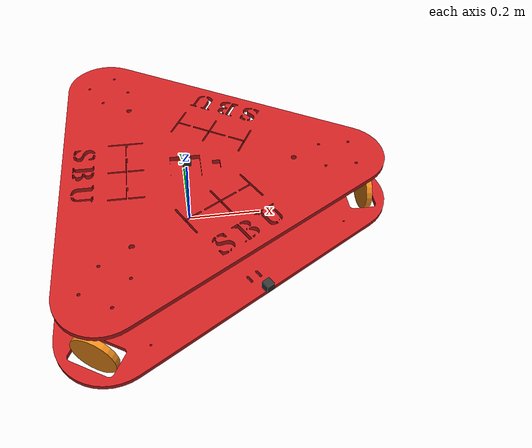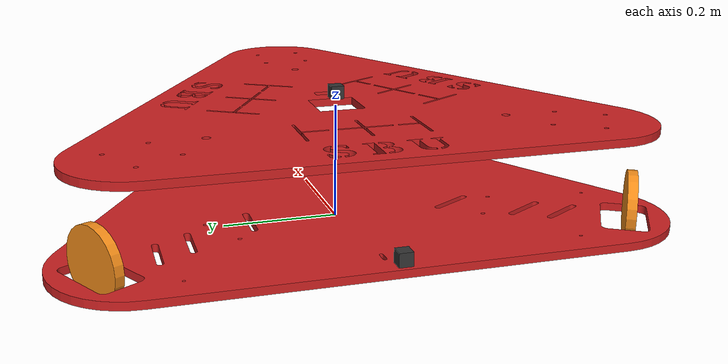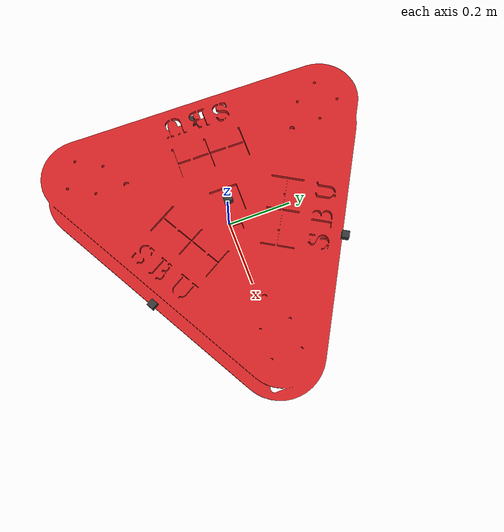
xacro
<?xml version="1.0"?>
<robot xmlns:xacro="http://www.ros.org/wiki/xacro" name="robot">

 <xacro:property name="M_PI" value="3.1415926535897931" />
 <xacro:property name="rob_scale" value="0.225"/>
 <xacro:property name="camera_z" value="${rob_scale}"/>
 <xacro:property name="base_z" value="${rob_scale*0.52}"/>

<xacro:property name="right_wheel_x" value="${rob_scale*2.195}"/>
<xacro:property name="right_wheel_y" value="${rob_scale*0}"/>
<xacro:property name="right_wheel_z" value="${rob_scale*0.27}"/>

<xacro:property name="right_wheel_length" value="${rob_scale*0.07}"/>
<xacro:property name="right_wheel_radius" value="${rob_scale*0.27}"/>
<xacro:property name="right_wheel_mass" value="${rob_scale*40}"/>

<xacro:property name="left_wheel_x" value="${rob_scale*-1.10000}"/>
<xacro:property name="left_wheel_y" value="${rob_scale*-1.9}"/>
<xacro:property name="left_wheel_z" value="${rob_scale*0.27}"/>

<xacro:property name="left_wheel_length" value="${rob_scale*0.07}"/>
<xacro:property name="left_wheel_radius" value="${rob_scale*0.27}"/>
<xacro:property name="left_wheel_mass" value="${rob_scale*40}"/>

<xacro:property name="left2_wheel_x" value="${rob_scale*-1.10000}"/>
<xacro:property name="left2_wheel_y" value="${rob_scale*1.9}"/>
<xacro:property name="left2_wheel_z" value="${rob_scale*0.27}"/>

<xacro:property name="left2_wheel_length" value="${rob_scale*0.07}"/>
<xacro:property name="left2_wheel_radius" value="${rob_scale*0.27}"/>
<xacro:property name="left2_wheel_mass" value="${rob_scale*40}"/>

<xacro:property name="sensor_size" value="${rob_scale*0.1}"/>

  <material name="black">
    <color rgba="0.0 0.0 0.0 1.0"/>
  </material>
  <material name="blue">
    <color rgba="0.203125 0.23828125 0.28515625 1.0"/>
  </material>
  <material name="green">
    <color rgba="0.0 0.8 0.0 1.0"/>
  </material>
  <material name="grey">
    <color rgba="0.2 0.2 0.2 1.0"/>
  </material>
  <material name="orange">
    <color rgba="1.0 0.423529411765 0.0392156862745 1.0"/>
  </material>
  <material name="brown">
    <color rgba="0.870588235294 0.811764705882 0.764705882353 1.0"/>
  </material>
  <material name="red">
    <color rgba="0.80078125 0.12890625 0.1328125 1.0"/>
  </material>
  <material name="white">
    <color rgba="1.0 1.0 1.0 1.0"/>
  </material>

    <gazebo reference="link_chassis">
    <material>Gazebo/Orange</material>
  </gazebo>
  <gazebo reference="link_left_wheel">
    <material>Gazebo/Orange</material>
  </gazebo>
  <gazebo reference="link_right_wheel">
    <material>Gazebo/Orange</material>
  </gazebo>
  <gazebo reference="link_left2_wheel">
    <material>Gazebo/Orange</material>
  </gazebo>
  <gazebo reference="camera_link">
    <material>Gazebo/Blue</material>
  </gazebo>
    <gazebo reference="sonar_link_1">
    <material>Gazebo/Black</material>
  </gazebo>
    <gazebo reference="sonar_link_2">
    <material>Gazebo/Black</material>
  </gazebo>
    <gazebo reference="sonar_link_3">
    <material>Gazebo/Black</material>
  </gazebo>
  <gazebo>
  <plugin name="gazebo_ros_control" filename="libgazebo_ros_control.so">
  <robotNamespace>/robot</robotNamespace>
  </plugin>
</gazebo>

     <xacro:macro name="surface_gen" params="main_link_name">
      <gazebo reference="${main_link_name}">
      <mu1>5000.0</mu1>
      <mu2>0</mu2>
      <fdir1>1 0 0</fdir1>
      <maxContacts>1</maxContacts>
      <minDepth>0.005</minDepth>
      <gravity>true</gravity>
            <surface>
      <friction>
      <ode>
      <slip1>0</slip1>
      <slip2>0</slip2>
    </ode>
              <torsional>
            <coefficient>1.0</coefficient>
            <surface_radius>0.5</surface_radius>
            <use_patch_radius>false</use_patch_radius>
          </torsional>
  </friction>
</surface>
  </gazebo>
  </xacro:macro>

   <!--Interial macros-->
  <xacro:macro name="cylinder_inertia" params="m r h">
    <inertial>
      <mass value="${m}"/>
      <inertia ixx="${m*(3*r*r+h*h)/12}" ixy = "0" ixz = "0" iyy="${m*(3*r*r+h*h)/12}" iyz = "0" izz="${m*r*r/2}"/>
    </inertial>
  </xacro:macro>

  <xacro:macro name="box_inertia" params="m w h d">
    <inertial>
      <mass value="${m}"/>
      <inertia ixx="${m / 12.0 * (d*d + h*h)}" ixy="0.0" ixz="0.0" iyy="${m / 12.0 * (w*w + h*h)}" iyz="0.0" izz="${m / 12.0 * (w*w + d*d)}"/>
    </inertial>
  </xacro:macro>

  <xacro:macro name="camera_link" params="parent">

    <link name="camera_link">
	<origin xyz="${0} ${0} ${camera_z}" rpy="0 0 0" />
      <collision>
        <geometry>
          <box size="${sensor_size} ${sensor_size} ${sensor_size}" />

        </geometry>
      </collision>

      <visual>
        <geometry>
          <box size="${sensor_size} ${sensor_size} ${sensor_size}" />
        </geometry>
        <material name="grey">
            <color rgba="0.2 0.2 0.2 1.0"/>
        </material>
      </visual>

	<xacro:box_inertia m="0.001" w="${sensor_size}" h="${sensor_size}" d="${sensor_size}"/>

    </link>

    <joint name="camera_joint" type="fixed">
        <parent link="${parent}"/>
        <child link="camera_link"/>
        <origin xyz="${0} ${0} ${camera_z}" rpy="0 0 0" />
        <axis xyz="1 0 0" />
    </joint>

    <gazebo reference="camera_link">
      <sensor type="camera" name="camera_camera_sensor">
        <update_rate>30.0</update_rate>
        <camera>
          <pose>0.035 0 0.078 0 0 0</pose>
          <horizontal_fov>${85 * M_PI/180.0}</horizontal_fov>
          <image>
            <format>R8G8B8</format>
            <width>1020</width>
            <height>1020</height>
          </image>
          <clip>
            <near>0.01</near>
            <far>100</far>
          </clip>
        </camera>

        <plugin name="camera_camera_controller" filename="libgazebo_ros_camera.so">
          <alwaysOn>true</alwaysOn>
          <updateRate>0.0</updateRate>
          <cameraName>robot_sensor/camera</cameraName>
          <imageTopicName>image_raw</imageTopicName>
          <cameraInfoTopicName>camera_info</cameraInfoTopicName>
          <frameName>camera_link</frameName>
          <hackBaseline>0.07</hackBaseline>
          <distortionK1>0.0</distortionK1>
          <distortionK2>0.0</distortionK2>
          <distortionK3>0.0</distortionK3>
          <distortionT1>0.0</distortionT1>
          <distortionT2>0.0</distortionT2>
        </plugin>
      </sensor>
    </gazebo>
  </xacro:macro>
  <xacro:macro name="sonar_link_gen" params="parent link_name link_x link_y link_z link_r link_p link_yaw">

   <link name="${link_name}">
        <origin xyz="${link_x} ${link_y} ${link_z}" rpy="${link_r} ${link_p} ${link_yaw}" />
      <collision>
        <geometry>
          <box size="${sensor_size} ${sensor_size} ${sensor_size}" />

        </geometry>
      </collision>

      <visual>
        <geometry>
          <box size="${sensor_size} ${sensor_size} ${sensor_size}" />
        </geometry>
        <material name="grey">
            <color rgba="0.2 0.2 0.2 1.0"/>
        </material>
      </visual>

	<xacro:box_inertia m="0.001" w="${sensor_size}" h="${sensor_size}" d="${sensor_size}"/>

  </link>

     <joint name="${link_name}_joint" type="fixed">
        <parent link="${parent}"/>
        <child link="${link_name}"/>
        <origin rpy="${link_r} ${link_p} ${link_yaw}" xyz="${link_x} ${link_y} ${link_z}"/>
        <axis xyz="1 0 0" />
    </joint>

      <gazebo reference="${link_name}">
	    <sensor type="ray" name="sonar_${link_name}">
	  <pose>0.25 0 0 0 0 0</pose>
	  <update_rate>5</update_rate>
	  <ray>
	    <scan>
	      <horizontal>
		<samples>5</samples>
		<resolution>1.0</resolution>
		<min_angle>${-M_PI/12}</min_angle>
		<max_angle>${+M_PI/12}</max_angle>
	      </horizontal>
	    </scan>
	    <range>
	      <min>0.02</min>
	      <max>1.5</max>
	      <resolution>0.01</resolution>
	    </range>
	  </ray>
	  <plugin filename="libgazebo_ros_range.so" name="gazebo_ros_range">
	    <gaussianNoise>0.005</gaussianNoise>
	    <alwaysOn>true</alwaysOn>
	    <updateRate>5</updateRate>
	    <topicName>sonar_${link_name}</topicName>
	    <frameName>${link_name}</frameName>
	    <fov>0.5</fov>
	    <radiation>ultrasound</radiation>
	  </plugin>
	</sensor>
    </gazebo>

  </xacro:macro>

 <link name="dummy">
   </link>

<link name="base_link">
    <inertial>
      <mass value="0.03"/>
      <origin xyz="0 0 ${base_z}" rpy="0 0 3.14"/>
      <inertia ixx="0.0738" ixy="0" ixz="0" iyy="0.0738" iyz="-0.000000" izz="0.1304"/>
    </inertial>
	<visual>
	<origin xyz="0 0 ${base_z}" rpy="0 0 3.14"/>
	<geometry>
        <mesh filename="package://rob_pkg/meshes/two_plate_s.dae" />
      </geometry>
      <material name="red"/>
    </visual>
    <collision >
	<origin xyz="0 0 ${base_z}" rpy="0 0 3.14"/>
      <geometry>
        <mesh filename="package://rob_pkg/meshes/two_plate_s.dae"   />
      </geometry>
    </collision>

  </link>
  <joint name="dummy_joint" type="fixed">
     <parent link="dummy"/>
     <child link="base_link"/>
   </joint>

  <xacro:camera_link parent="base_link" />

  <xacro:sonar_link_gen parent="base_link" link_name="sonar_link_1" link_x="${(left2_wheel_x + left_wheel_x)/1.45}" link_y="${(left2_wheel_y + left_wheel_y)/1.45}" link_z="${right_wheel_z}" link_r="0" link_p="0" link_yaw="${(M_PI)}" />

  <xacro:sonar_link_gen parent="base_link" link_name="sonar_link_2" link_x="${(right_wheel_x + left_wheel_x)/1.45}" link_y="${(right_wheel_y + left_wheel_y)/1.45}" link_z="${right_wheel_z}" link_r="0" link_p="0" link_yaw="${-(M_PI/3)}" />

  <xacro:sonar_link_gen parent="base_link" link_name="sonar_link_3" link_x="${(right_wheel_x + left2_wheel_x)/1.45}" link_y="${(right_wheel_y + left2_wheel_y)/1.4}" link_z="${right_wheel_z}" link_r="0" link_p="0" link_yaw="${(M_PI/3)}" />

    <link name="link_right_wheel">
      <mass value="${right_wheel_mass}"/>
      <origin rpy="0 ${M_PI/2} 0" xyz="${right_wheel_x} ${right_wheel_y} ${right_wheel_z}"/>
    <collision name="link_right_wheel_collision">
	<geometry>
	 <cylinder length="${right_wheel_length}" radius="${right_wheel_radius}" />
	</geometry>
    </collision>
    <visual name="link_right_wheel_visual">
	<geometry>
	 <cylinder length="${right_wheel_length}" radius="${right_wheel_radius}" />
	</geometry>
    </visual>
 <xacro:cylinder_inertia m="${right_wheel_mass}" r="${right_wheel_radius}" h="${right_wheel_length}"/>
  </link>

<xacro:surface_gen main_link_name="link_right_wheel"/>

  <joint name="joint_right_wheel" type="continuous">
	<origin rpy="0 ${M_PI/2} 0" xyz="${right_wheel_x} 0 ${right_wheel_z}"/>
    <child link="link_right_wheel"/>
    <parent link="base_link"/>
    <axis rpy="0 0 0" xyz="0 0 1"/>
  </joint>

<!-- Rear wheels transmission -->
<transmission name="transmission_right_wheel">
    <type>transmission_interface/SimpleTransmission</type>
    <joint name="joint_right_wheel">
        <hardwareInterface>hardware_interface/VelocityJointInterface</hardwareInterface>
    </joint>
    <actuator name="motor_right_wheel">
        <hardwareInterface>hardware_interface/VelocityJointInterface</hardwareInterface>
        <mechanicalReduction>1</mechanicalReduction>
    </actuator>
</transmission>

    <link name="link_left_wheel">
      <mass value="${left_wheel_mass}"/>
      <origin rpy="0 ${M_PI/2} ${M_PI/3}" xyz="${left_wheel_x} ${left_wheel_y} ${left_wheel_z}"/>
    <collision name="link_left_wheel_collision">
	<geometry>
	 <cylinder length="${left_wheel_length}" radius="${left_wheel_radius}" />
	</geometry>
    </collision>
    <visual name="link_left_wheel_visual">
	<geometry>
	 <cylinder length="${left_wheel_length}" radius="${left_wheel_radius}" />
	</geometry>
    </visual>
    <xacro:cylinder_inertia m="${right_wheel_mass}" r="${right_wheel_radius}" h="${right_wheel_length}"/>
  </link>

<xacro:surface_gen main_link_name="link_left_wheel"/>

  <joint name="joint_left_wheel" type="continuous">
  <origin rpy="0 ${M_PI/2} ${M_PI/3}" xyz="${left_wheel_x} ${left_wheel_y} ${left_wheel_z}"/>
    <child link="link_left_wheel"/>
    <parent link="base_link"/>
    <axis rpy="0 0 0" xyz="0 0 1"/>
  </joint>

<!-- Rear wheels transmission -->
<transmission name="transmission_left_wheel">
    <type>transmission_interface/SimpleTransmission</type>
    <joint name="joint_left_wheel">
        <hardwareInterface>hardware_interface/VelocityJointInterface</hardwareInterface>
    </joint>
    <actuator name="motor_left_wheel">
        <hardwareInterface>hardware_interface/VelocityJointInterface</hardwareInterface>
        <mechanicalReduction>1</mechanicalReduction>
    </actuator>
</transmission>

    <link name="link_left2_wheel">
      <mass value="${left2_wheel_mass}"/>
      <origin rpy="0 ${M_PI/2} ${M_PI*2/3}" xyz="${left2_wheel_x} ${left2_wheel_y} ${left2_wheel_z}"/>
    <collision name="link_left2_wheel_collision">
	<geometry>
	 <cylinder length="${left2_wheel_length}" radius="${left2_wheel_radius}" />
	</geometry>
    </collision>
    <visual name="link_left2_wheel_visual">
	<geometry>
	 <cylinder length="${left2_wheel_length}" radius="${left2_wheel_radius}" />
	</geometry>
    </visual>
    <xacro:cylinder_inertia m="${right_wheel_mass}" r="${right_wheel_radius}" h="${right_wheel_length}"/>
  </link>

<xacro:surface_gen main_link_name="link_left2_wheel"/>

  <joint name="joint_left2_wheel" type="continuous">
  <origin rpy="0 ${M_PI/2} ${M_PI*2/3}" xyz="${left2_wheel_x} ${left2_wheel_y} ${left2_wheel_z}"/>
    <child link="link_left2_wheel"/>
    <parent link="base_link"/>
    <axis rpy="0 0 0" xyz="0 0 1"/>
  </joint>

<!-- Rear wheels transmission -->
<transmission name="transmission_left2_wheel">
    <type>transmission_interface/SimpleTransmission</type>
    <joint name="joint_left2_wheel">
        <hardwareInterface>hardware_interface/VelocityJointInterface</hardwareInterface>
    </joint>
    <actuator name="motor_left2_wheel">
        <hardwareInterface>hardware_interface/VelocityJointInterface</hardwareInterface>
        <mechanicalReduction>1</mechanicalReduction>
    </actuator>
</transmission>

</robot>
